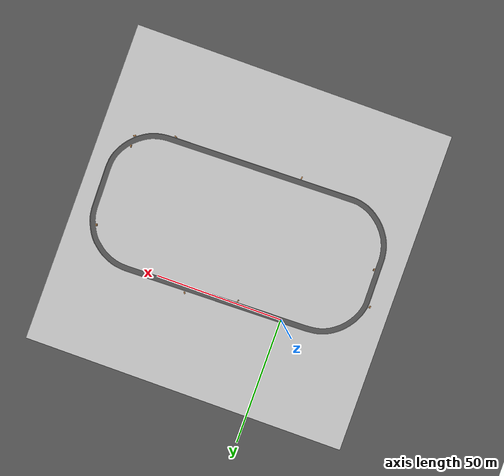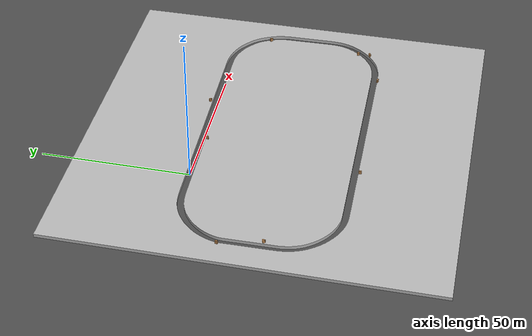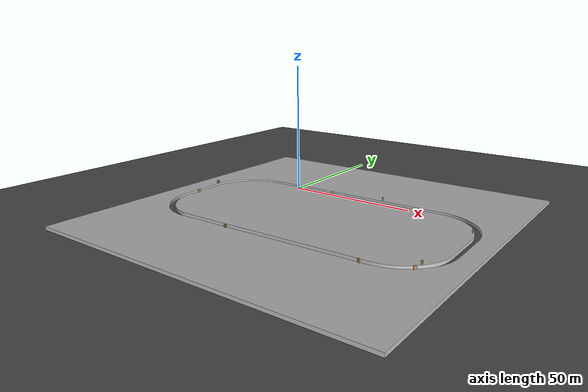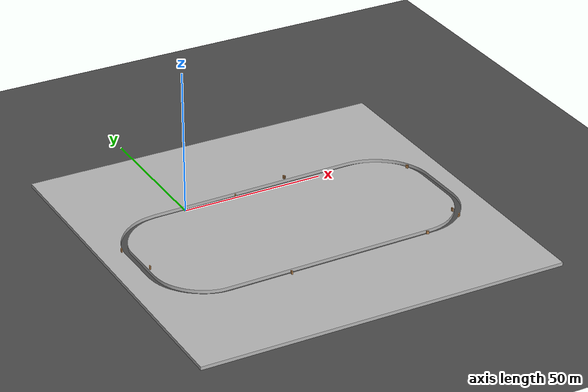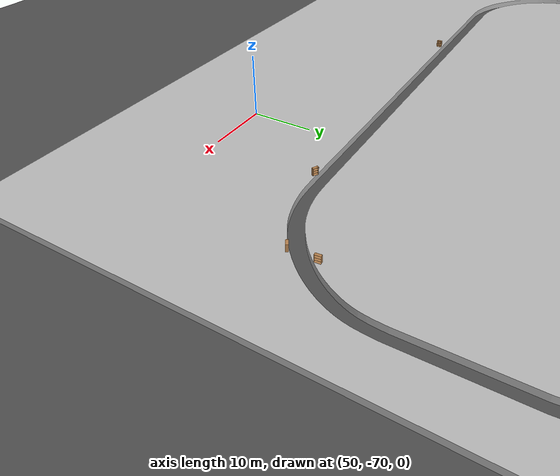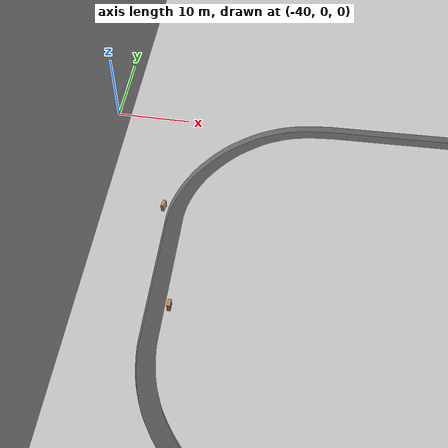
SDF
<sdf version="1.7">
 <world name="default">
  <light name="sun" type="directional">
   <pose>0 0 100 0 -0 0</pose>
   <diffuse>0.8 0.8 0.8 1</diffuse>
   <specular>0.1 0.1 0.1 1</specular>
   <attenuation>
    <range>1000</range>
    <constant>0.9</constant>
    <linear>0.01</linear>
    <quadratic>0.001</quadratic>
   </attenuation>
   <direction>-0.5 0.5 -1</direction>
   <spot><inner_angle>0</inner_angle><outer_angle>0</outer_angle><falloff>0</falloff></spot>
  </light>
  <model name="ground_plane">
   <static>1</static>
   <link name="link">
    <collision name="collision">
     <geometry><plane><normal>0 0 1</normal><size>1000 1000</size></plane></geometry>
     <surface><friction><ode><mu>100</mu><mu2>50</mu2></ode></friction></surface>
    </collision>
    <visual name="visual">
     <cast_shadows>0</cast_shadows>
     <geometry><plane><normal>0 0 1</normal><size>1000 1000</size></plane></geometry>
     <material>
      <script>
       <uri>model://asphalt_plane/materials/scripts</uri>
       <uri>model://asphalt_plane/materials/textures</uri>
       <name>vrc/asphalt</name>
      </script>
     </material>
    </visual>
   </link>
  </model>
  <gravity>0 0 -9.8</gravity>
  <magnetic_field>6e-06 2.3e-05 -4.2e-05</magnetic_field>
  <atmosphere type="adiabatic"/>
  <physics name="default_physics" default="0" type="ode">
   <max_step_size>0.001</max_step_size>
   <real_time_factor>1</real_time_factor>
   <real_time_update_rate>1000</real_time_update_rate>
  </physics>
  <scene><ambient>0.4 0.4 0.4 1</ambient><background>0.7 0.7 0.7 1</background><shadows>1</shadows></scene>
  <spherical_coordinates>
   <surface_model>EARTH_WGS84</surface_model>
   <latitude_deg>0</latitude_deg>
   <longitude_deg>0</longitude_deg>
   <elevation>0</elevation>
   <heading_deg>0</heading_deg>
  </spherical_coordinates>
  <model name="obj_IMS_track">
   <pose>81 31 -0.5 0 -0 0</pose>
   <static>1</static>
   <link name="body">
    <collision name="collision">
     <geometry><mesh><uri>model://obj_IMS_track/IMS_track.stl</uri><scale>1 1 1</scale></mesh></geometry>
    </collision>
    <visual name="visual">
     <geometry><mesh><uri>model://obj_IMS_track/IMS_track.stl</uri><scale>1 1 1</scale></mesh></geometry>
    </visual>
   </link>
  </model>
  <audio><device>default</device></audio>
  <model name="bookshelf_clone_0">
   <static>1</static>
   <link name="link">
    <inertial><mass>1</mass></inertial>
    <collision name="back">
     <pose>0 0.005 0.6 0 -0 0</pose>
     <geometry><box><size>0.9 0.01 1.2</size></box></geometry>
    </collision>
    <visual name="visual1">
     <pose>0 0.005 0.6 0 -0 0</pose>
     <geometry><box><size>0.9 0.01 1.2</size></box></geometry>
     <material>
      <script><uri>file://media/materials/scripts/gazebo.material</uri><name>Gazebo/Wood</name></script>
     </material>
    </visual>
    <collision name="left_side">
     <pose>0.45 -0.195 0.6 0 -0 0</pose>
     <geometry><box><size>0.02 0.4 1.2</size></box></geometry>
    </collision>
    <visual name="visual2">
     <pose>0.45 -0.195 0.6 0 -0 0</pose>
     <geometry><box><size>0.02 0.4 1.2</size></box></geometry>
     <material>
      <script><uri>file://media/materials/scripts/gazebo.material</uri><name>Gazebo/Wood</name></script>
     </material>
    </visual>
    <collision name="right_side">
     <pose>-0.45 -0.195 0.6 0 -0 0</pose>
     <geometry><box><size>0.02 0.4 1.2</size></box></geometry>
    </collision>
    <visual name="visual3">
     <pose>-0.45 -0.195 0.6 0 -0 0</pose>
     <geometry><box><size>0.02 0.4 1.2</size></box></geometry>
     <material>
      <script><uri>file://media/materials/scripts/gazebo.material</uri><name>Gazebo/Wood</name></script>
     </material>
    </visual>
    <collision name="bottom">
     <pose>0 -0.195 0.03 0 -0 0</pose>
     <geometry><box><size>0.88 0.4 0.06</size></box></geometry>
    </collision>
    <visual name="visual4">
     <pose>0 -0.195 0.03 0 -0 0</pose>
     <geometry><box><size>0.88 0.4 0.06</size></box></geometry>
     <material>
      <script><uri>file://media/materials/scripts/gazebo.material</uri><name>Gazebo/Wood</name></script>
     </material>
    </visual>
    <collision name="top">
     <pose>0 -0.195 1.19 0 -0 0</pose>
     <geometry><box><size>0.88 0.4 0.02</size></box></geometry>
    </collision>
    <visual name="visual5">
     <pose>0 -0.195 1.19 0 -0 0</pose>
     <geometry><box><size>0.88 0.4 0.02</size></box></geometry>
     <material>
      <script><uri>file://media/materials/scripts/gazebo.material</uri><name>Gazebo/Wood</name></script>
     </material>
    </visual>
    <collision name="low_shelf">
     <pose>0 -0.195 0.43 0 -0 0</pose>
     <geometry><box><size>0.88 0.4 0.02</size></box></geometry>
    </collision>
    <visual name="visual6">
     <pose>0 -0.195 0.43 0 -0 0</pose>
     <geometry><box><size>0.88 0.4 0.02</size></box></geometry>
     <material>
      <script><uri>file://media/materials/scripts/gazebo.material</uri><name>Gazebo/Wood</name></script>
     </material>
    </visual>
    <collision name="high_shelf">
     <pose>0 -0.195 0.8 0 -0 0</pose>
     <geometry><box><size>0.88 0.4 0.02</size></box></geometry>
    </collision>
    <visual name="visual7">
     <pose>0 -0.195 0.8 0 -0 0</pose>
     <geometry><box><size>0.88 0.4 0.02</size></box></geometry>
     <material>
      <script><uri>file://media/materials/scripts/gazebo.material</uri><name>Gazebo/Wood</name></script>
     </material>
    </visual>
   </link>
   <pose>38.3129 2.63837 0.959092 0 0 -0.95491</pose>
  </model>
  <model name="bookshelf_clone_4">
   <static>1</static>
   <link name="link">
    <inertial><mass>1</mass></inertial>
    <collision name="back">
     <pose>0 0.005 0.6 0 -0 0</pose>
     <geometry><box><size>0.9 0.01 1.2</size></box></geometry>
    </collision>
    <visual name="visual1">
     <pose>0 0.005 0.6 0 -0 0</pose>
     <geometry><box><size>0.9 0.01 1.2</size></box></geometry>
     <material>
      <script><uri>file://media/materials/scripts/gazebo.material</uri><name>Gazebo/Wood</name></script>
     </material>
    </visual>
    <collision name="left_side">
     <pose>0.45 -0.195 0.6 0 -0 0</pose>
     <geometry><box><size>0.02 0.4 1.2</size></box></geometry>
    </collision>
    <visual name="visual2">
     <pose>0.45 -0.195 0.6 0 -0 0</pose>
     <geometry><box><size>0.02 0.4 1.2</size></box></geometry>
     <material>
      <script><uri>file://media/materials/scripts/gazebo.material</uri><name>Gazebo/Wood</name></script>
     </material>
    </visual>
    <collision name="right_side">
     <pose>-0.45 -0.195 0.6 0 -0 0</pose>
     <geometry><box><size>0.02 0.4 1.2</size></box></geometry>
    </collision>
    <visual name="visual3">
     <pose>-0.45 -0.195 0.6 0 -0 0</pose>
     <geometry><box><size>0.02 0.4 1.2</size></box></geometry>
     <material>
      <script><uri>file://media/materials/scripts/gazebo.material</uri><name>Gazebo/Wood</name></script>
     </material>
    </visual>
    <collision name="bottom">
     <pose>0 -0.195 0.03 0 -0 0</pose>
     <geometry><box><size>0.88 0.4 0.06</size></box></geometry>
    </collision>
    <visual name="visual4">
     <pose>0 -0.195 0.03 0 -0 0</pose>
     <geometry><box><size>0.88 0.4 0.06</size></box></geometry>
     <material>
      <script><uri>file://media/materials/scripts/gazebo.material</uri><name>Gazebo/Wood</name></script>
     </material>
    </visual>
    <collision name="top">
     <pose>0 -0.195 1.19 0 -0 0</pose>
     <geometry><box><size>0.88 0.4 0.02</size></box></geometry>
    </collision>
    <visual name="visual5">
     <pose>0 -0.195 1.19 0 -0 0</pose>
     <geometry><box><size>0.88 0.4 0.02</size></box></geometry>
     <material>
      <script><uri>file://media/materials/scripts/gazebo.material</uri><name>Gazebo/Wood</name></script>
     </material>
    </visual>
    <collision name="low_shelf">
     <pose>0 -0.195 0.43 0 -0 0</pose>
     <geometry><box><size>0.88 0.4 0.02</size></box></geometry>
    </collision>
    <visual name="visual6">
     <pose>0 -0.195 0.43 0 -0 0</pose>
     <geometry><box><size>0.88 0.4 0.02</size></box></geometry>
     <material>
      <script><uri>file://media/materials/scripts/gazebo.material</uri><name>Gazebo/Wood</name></script>
     </material>
    </visual>
    <collision name="high_shelf">
     <pose>0 -0.195 0.8 0 -0 0</pose>
     <geometry><box><size>0.88 0.4 0.02</size></box></geometry>
    </collision>
    <visual name="visual7">
     <pose>0 -0.195 0.8 0 -0 0</pose>
     <geometry><box><size>0.88 0.4 0.02</size></box></geometry>
     <material>
      <script><uri>file://media/materials/scripts/gazebo.material</uri><name>Gazebo/Wood</name></script>
     </material>
    </visual>
   </link>
   <pose>78.2639 -10.6813 0.959092 0 -0 1.99192</pose>
  </model>
  <model name="bookshelf_clone_5">
   <static>1</static>
   <link name="link">
    <inertial><mass>1</mass></inertial>
    <collision name="back">
     <pose>0 0.005 0.6 0 -0 0</pose>
     <geometry><box><size>0.9 0.01 1.2</size></box></geometry>
    </collision>
    <visual name="visual1">
     <pose>0 0.005 0.6 0 -0 0</pose>
     <geometry><box><size>0.9 0.01 1.2</size></box></geometry>
     <material>
      <script><uri>file://media/materials/scripts/gazebo.material</uri><name>Gazebo/Wood</name></script>
     </material>
    </visual>
    <collision name="left_side">
     <pose>0.45 -0.195 0.6 0 -0 0</pose>
     <geometry><box><size>0.02 0.4 1.2</size></box></geometry>
    </collision>
    <visual name="visual2">
     <pose>0.45 -0.195 0.6 0 -0 0</pose>
     <geometry><box><size>0.02 0.4 1.2</size></box></geometry>
     <material>
      <script><uri>file://media/materials/scripts/gazebo.material</uri><name>Gazebo/Wood</name></script>
     </material>
    </visual>
    <collision name="right_side">
     <pose>-0.45 -0.195 0.6 0 -0 0</pose>
     <geometry><box><size>0.02 0.4 1.2</size></box></geometry>
    </collision>
    <visual name="visual3">
     <pose>-0.45 -0.195 0.6 0 -0 0</pose>
     <geometry><box><size>0.02 0.4 1.2</size></box></geometry>
     <material>
      <script><uri>file://media/materials/scripts/gazebo.material</uri><name>Gazebo/Wood</name></script>
     </material>
    </visual>
    <collision name="bottom">
     <pose>0 -0.195 0.03 0 -0 0</pose>
     <geometry><box><size>0.88 0.4 0.06</size></box></geometry>
    </collision>
    <visual name="visual4">
     <pose>0 -0.195 0.03 0 -0 0</pose>
     <geometry><box><size>0.88 0.4 0.06</size></box></geometry>
     <material>
      <script><uri>file://media/materials/scripts/gazebo.material</uri><name>Gazebo/Wood</name></script>
     </material>
    </visual>
    <collision name="top">
     <pose>0 -0.195 1.19 0 -0 0</pose>
     <geometry><box><size>0.88 0.4 0.02</size></box></geometry>
    </collision>
    <visual name="visual5">
     <pose>0 -0.195 1.19 0 -0 0</pose>
     <geometry><box><size>0.88 0.4 0.02</size></box></geometry>
     <material>
      <script><uri>file://media/materials/scripts/gazebo.material</uri><name>Gazebo/Wood</name></script>
     </material>
    </visual>
    <collision name="low_shelf">
     <pose>0 -0.195 0.43 0 -0 0</pose>
     <geometry><box><size>0.88 0.4 0.02</size></box></geometry>
    </collision>
    <visual name="visual6">
     <pose>0 -0.195 0.43 0 -0 0</pose>
     <geometry><box><size>0.88 0.4 0.02</size></box></geometry>
     <material>
      <script><uri>file://media/materials/scripts/gazebo.material</uri><name>Gazebo/Wood</name></script>
     </material>
    </visual>
    <collision name="high_shelf">
     <pose>0 -0.195 0.8 0 -0 0</pose>
     <geometry><box><size>0.88 0.4 0.02</size></box></geometry>
    </collision>
    <visual name="visual7">
     <pose>0 -0.195 0.8 0 -0 0</pose>
     <geometry><box><size>0.88 0.4 0.02</size></box></geometry>
     <material>
      <script><uri>file://media/materials/scripts/gazebo.material</uri><name>Gazebo/Wood</name></script>
     </material>
    </visual>
   </link>
   <pose>-26.7126 -30.0844 0.959092 0 0 -1.59889</pose>
  </model>
  <model name="bookshelf_clone_6">
   <static>1</static>
   <link name="link">
    <inertial><mass>1</mass></inertial>
    <collision name="back">
     <pose>0 0.005 0.6 0 -0 0</pose>
     <geometry><box><size>0.9 0.01 1.2</size></box></geometry>
    </collision>
    <visual name="visual1">
     <pose>0 0.005 0.6 0 -0 0</pose>
     <geometry><box><size>0.9 0.01 1.2</size></box></geometry>
     <material>
      <script><uri>file://media/materials/scripts/gazebo.material</uri><name>Gazebo/Wood</name></script>
     </material>
    </visual>
    <collision name="left_side">
     <pose>0.45 -0.195 0.6 0 -0 0</pose>
     <geometry><box><size>0.02 0.4 1.2</size></box></geometry>
    </collision>
    <visual name="visual2">
     <pose>0.45 -0.195 0.6 0 -0 0</pose>
     <geometry><box><size>0.02 0.4 1.2</size></box></geometry>
     <material>
      <script><uri>file://media/materials/scripts/gazebo.material</uri><name>Gazebo/Wood</name></script>
     </material>
    </visual>
    <collision name="right_side">
     <pose>-0.45 -0.195 0.6 0 -0 0</pose>
     <geometry><box><size>0.02 0.4 1.2</size></box></geometry>
    </collision>
    <visual name="visual3">
     <pose>-0.45 -0.195 0.6 0 -0 0</pose>
     <geometry><box><size>0.02 0.4 1.2</size></box></geometry>
     <material>
      <script><uri>file://media/materials/scripts/gazebo.material</uri><name>Gazebo/Wood</name></script>
     </material>
    </visual>
    <collision name="bottom">
     <pose>0 -0.195 0.03 0 -0 0</pose>
     <geometry><box><size>0.88 0.4 0.06</size></box></geometry>
    </collision>
    <visual name="visual4">
     <pose>0 -0.195 0.03 0 -0 0</pose>
     <geometry><box><size>0.88 0.4 0.06</size></box></geometry>
     <material>
      <script><uri>file://media/materials/scripts/gazebo.material</uri><name>Gazebo/Wood</name></script>
     </material>
    </visual>
    <collision name="top">
     <pose>0 -0.195 1.19 0 -0 0</pose>
     <geometry><box><size>0.88 0.4 0.02</size></box></geometry>
    </collision>
    <visual name="visual5">
     <pose>0 -0.195 1.19 0 -0 0</pose>
     <geometry><box><size>0.88 0.4 0.02</size></box></geometry>
     <material>
      <script><uri>file://media/materials/scripts/gazebo.material</uri><name>Gazebo/Wood</name></script>
     </material>
    </visual>
    <collision name="low_shelf">
     <pose>0 -0.195 0.43 0 -0 0</pose>
     <geometry><box><size>0.88 0.4 0.02</size></box></geometry>
    </collision>
    <visual name="visual6">
     <pose>0 -0.195 0.43 0 -0 0</pose>
     <geometry><box><size>0.88 0.4 0.02</size></box></geometry>
     <material>
      <script><uri>file://media/materials/scripts/gazebo.material</uri><name>Gazebo/Wood</name></script>
     </material>
    </visual>
    <collision name="high_shelf">
     <pose>0 -0.195 0.8 0 -0 0</pose>
     <geometry><box><size>0.88 0.4 0.02</size></box></geometry>
    </collision>
    <visual name="visual7">
     <pose>0 -0.195 0.8 0 -0 0</pose>
     <geometry><box><size>0.88 0.4 0.02</size></box></geometry>
     <material>
      <script><uri>file://media/materials/scripts/gazebo.material</uri><name>Gazebo/Wood</name></script>
     </material>
    </visual>
   </link>
   <pose>-30.478 -16.1308 0.959092 0 -0 1.37454</pose>
  </model>
  <model name="bookshelf_clone_clone">
   <static>1</static>
   <link name="link">
    <inertial><mass>1</mass></inertial>
    <collision name="back">
     <pose>0 0.005 0.6 0 -0 0</pose>
     <geometry><box><size>0.9 0.01 1.2</size></box></geometry>
    </collision>
    <visual name="visual1">
     <pose>0 0.005 0.6 0 -0 0</pose>
     <geometry><box><size>0.9 0.01 1.2</size></box></geometry>
     <material>
      <script><uri>file://media/materials/scripts/gazebo.material</uri><name>Gazebo/Wood</name></script>
     </material>
    </visual>
    <collision name="left_side">
     <pose>0.45 -0.195 0.6 0 -0 0</pose>
     <geometry><box><size>0.02 0.4 1.2</size></box></geometry>
    </collision>
    <visual name="visual2">
     <pose>0.45 -0.195 0.6 0 -0 0</pose>
     <geometry><box><size>0.02 0.4 1.2</size></box></geometry>
     <material>
      <script><uri>file://media/materials/scripts/gazebo.material</uri><name>Gazebo/Wood</name></script>
     </material>
    </visual>
    <collision name="right_side">
     <pose>-0.45 -0.195 0.6 0 -0 0</pose>
     <geometry><box><size>0.02 0.4 1.2</size></box></geometry>
    </collision>
    <visual name="visual3">
     <pose>-0.45 -0.195 0.6 0 -0 0</pose>
     <geometry><box><size>0.02 0.4 1.2</size></box></geometry>
     <material>
      <script><uri>file://media/materials/scripts/gazebo.material</uri><name>Gazebo/Wood</name></script>
     </material>
    </visual>
    <collision name="bottom">
     <pose>0 -0.195 0.03 0 -0 0</pose>
     <geometry><box><size>0.88 0.4 0.06</size></box></geometry>
    </collision>
    <visual name="visual4">
     <pose>0 -0.195 0.03 0 -0 0</pose>
     <geometry><box><size>0.88 0.4 0.06</size></box></geometry>
     <material>
      <script><uri>file://media/materials/scripts/gazebo.material</uri><name>Gazebo/Wood</name></script>
     </material>
    </visual>
    <collision name="top">
     <pose>0 -0.195 1.19 0 -0 0</pose>
     <geometry><box><size>0.88 0.4 0.02</size></box></geometry>
    </collision>
    <visual name="visual5">
     <pose>0 -0.195 1.19 0 -0 0</pose>
     <geometry><box><size>0.88 0.4 0.02</size></box></geometry>
     <material>
      <script><uri>file://media/materials/scripts/gazebo.material</uri><name>Gazebo/Wood</name></script>
     </material>
    </visual>
    <collision name="low_shelf">
     <pose>0 -0.195 0.43 0 -0 0</pose>
     <geometry><box><size>0.88 0.4 0.02</size></box></geometry>
    </collision>
    <visual name="visual6">
     <pose>0 -0.195 0.43 0 -0 0</pose>
     <geometry><box><size>0.88 0.4 0.02</size></box></geometry>
     <material>
      <script><uri>file://media/materials/scripts/gazebo.material</uri><name>Gazebo/Wood</name></script>
     </material>
    </visual>
    <collision name="high_shelf">
     <pose>0 -0.195 0.8 0 -0 0</pose>
     <geometry><box><size>0.88 0.4 0.02</size></box></geometry>
    </collision>
    <visual name="visual7">
     <pose>0 -0.195 0.8 0 -0 0</pose>
     <geometry><box><size>0.88 0.4 0.02</size></box></geometry>
     <material>
      <script><uri>file://media/materials/scripts/gazebo.material</uri><name>Gazebo/Wood</name></script>
     </material>
    </visual>
   </link>
   <pose>18.0561 -1.40677 0.959092 0 0 -1.8756</pose>
  </model>
  <model name="bookshelf_clone_11_clone">
   <static>1</static>
   <link name="link">
    <inertial><mass>1</mass></inertial>
    <collision name="back">
     <pose>0 0.005 0.6 0 -0 0</pose>
     <geometry><box><size>0.9 0.01 1.2</size></box></geometry>
    </collision>
    <visual name="visual1">
     <pose>0 0.005 0.6 0 -0 0</pose>
     <geometry><box><size>0.9 0.01 1.2</size></box></geometry>
     <material>
      <script><uri>file://media/materials/scripts/gazebo.material</uri><name>Gazebo/Wood</name></script>
     </material>
    </visual>
    <collision name="left_side">
     <pose>0.45 -0.195 0.6 0 -0 0</pose>
     <geometry><box><size>0.02 0.4 1.2</size></box></geometry>
    </collision>
    <visual name="visual2">
     <pose>0.45 -0.195 0.6 0 -0 0</pose>
     <geometry><box><size>0.02 0.4 1.2</size></box></geometry>
     <material>
      <script><uri>file://media/materials/scripts/gazebo.material</uri><name>Gazebo/Wood</name></script>
     </material>
    </visual>
    <collision name="right_side">
     <pose>-0.45 -0.195 0.6 0 -0 0</pose>
     <geometry><box><size>0.02 0.4 1.2</size></box></geometry>
    </collision>
    <visual name="visual3">
     <pose>-0.45 -0.195 0.6 0 -0 0</pose>
     <geometry><box><size>0.02 0.4 1.2</size></box></geometry>
     <material>
      <script><uri>file://media/materials/scripts/gazebo.material</uri><name>Gazebo/Wood</name></script>
     </material>
    </visual>
    <collision name="bottom">
     <pose>0 -0.195 0.03 0 -0 0</pose>
     <geometry><box><size>0.88 0.4 0.06</size></box></geometry>
    </collision>
    <visual name="visual4">
     <pose>0 -0.195 0.03 0 -0 0</pose>
     <geometry><box><size>0.88 0.4 0.06</size></box></geometry>
     <material>
      <script><uri>file://media/materials/scripts/gazebo.material</uri><name>Gazebo/Wood</name></script>
     </material>
    </visual>
    <collision name="top">
     <pose>0 -0.195 1.19 0 -0 0</pose>
     <geometry><box><size>0.88 0.4 0.02</size></box></geometry>
    </collision>
    <visual name="visual5">
     <pose>0 -0.195 1.19 0 -0 0</pose>
     <geometry><box><size>0.88 0.4 0.02</size></box></geometry>
     <material>
      <script><uri>file://media/materials/scripts/gazebo.material</uri><name>Gazebo/Wood</name></script>
     </material>
    </visual>
    <collision name="low_shelf">
     <pose>0 -0.195 0.43 0 -0 0</pose>
     <geometry><box><size>0.88 0.4 0.02</size></box></geometry>
    </collision>
    <visual name="visual6">
     <pose>0 -0.195 0.43 0 -0 0</pose>
     <geometry><box><size>0.88 0.4 0.02</size></box></geometry>
     <material>
      <script><uri>file://media/materials/scripts/gazebo.material</uri><name>Gazebo/Wood</name></script>
     </material>
    </visual>
    <collision name="high_shelf">
     <pose>0 -0.195 0.8 0 -0 0</pose>
     <geometry><box><size>0.88 0.4 0.02</size></box></geometry>
    </collision>
    <visual name="visual7">
     <pose>0 -0.195 0.8 0 -0 0</pose>
     <geometry><box><size>0.88 0.4 0.02</size></box></geometry>
     <material>
      <script><uri>file://media/materials/scripts/gazebo.material</uri><name>Gazebo/Wood</name></script>
     </material>
    </visual>
   </link>
   <pose>76.0056 -43.2402 0.959092 0 -0 1.68289</pose>
  </model>
  <model name="bookshelf_clone_10_clone">
   <static>1</static>
   <link name="link">
    <inertial><mass>1</mass></inertial>
    <collision name="back">
     <pose>0 0.005 0.6 0 -0 0</pose>
     <geometry><box><size>0.9 0.01 1.2</size></box></geometry>
    </collision>
    <visual name="visual1">
     <pose>0 0.005 0.6 0 -0 0</pose>
     <geometry><box><size>0.9 0.01 1.2</size></box></geometry>
     <material>
      <script><uri>file://media/materials/scripts/gazebo.material</uri><name>Gazebo/Wood</name></script>
     </material>
    </visual>
    <collision name="left_side">
     <pose>0.45 -0.195 0.6 0 -0 0</pose>
     <geometry><box><size>0.02 0.4 1.2</size></box></geometry>
    </collision>
    <visual name="visual2">
     <pose>0.45 -0.195 0.6 0 -0 0</pose>
     <geometry><box><size>0.02 0.4 1.2</size></box></geometry>
     <material>
      <script><uri>file://media/materials/scripts/gazebo.material</uri><name>Gazebo/Wood</name></script>
     </material>
    </visual>
    <collision name="right_side">
     <pose>-0.45 -0.195 0.6 0 -0 0</pose>
     <geometry><box><size>0.02 0.4 1.2</size></box></geometry>
    </collision>
    <visual name="visual3">
     <pose>-0.45 -0.195 0.6 0 -0 0</pose>
     <geometry><box><size>0.02 0.4 1.2</size></box></geometry>
     <material>
      <script><uri>file://media/materials/scripts/gazebo.material</uri><name>Gazebo/Wood</name></script>
     </material>
    </visual>
    <collision name="bottom">
     <pose>0 -0.195 0.03 0 -0 0</pose>
     <geometry><box><size>0.88 0.4 0.06</size></box></geometry>
    </collision>
    <visual name="visual4">
     <pose>0 -0.195 0.03 0 -0 0</pose>
     <geometry><box><size>0.88 0.4 0.06</size></box></geometry>
     <material>
      <script><uri>file://media/materials/scripts/gazebo.material</uri><name>Gazebo/Wood</name></script>
     </material>
    </visual>
    <collision name="top">
     <pose>0 -0.195 1.19 0 -0 0</pose>
     <geometry><box><size>0.88 0.4 0.02</size></box></geometry>
    </collision>
    <visual name="visual5">
     <pose>0 -0.195 1.19 0 -0 0</pose>
     <geometry><box><size>0.88 0.4 0.02</size></box></geometry>
     <material>
      <script><uri>file://media/materials/scripts/gazebo.material</uri><name>Gazebo/Wood</name></script>
     </material>
    </visual>
    <collision name="low_shelf">
     <pose>0 -0.195 0.43 0 -0 0</pose>
     <geometry><box><size>0.88 0.4 0.02</size></box></geometry>
    </collision>
    <visual name="visual6">
     <pose>0 -0.195 0.43 0 -0 0</pose>
     <geometry><box><size>0.88 0.4 0.02</size></box></geometry>
     <material>
      <script><uri>file://media/materials/scripts/gazebo.material</uri><name>Gazebo/Wood</name></script>
     </material>
    </visual>
    <collision name="high_shelf">
     <pose>0 -0.195 0.8 0 -0 0</pose>
     <geometry><box><size>0.88 0.4 0.02</size></box></geometry>
    </collision>
    <visual name="visual7">
     <pose>0 -0.195 0.8 0 -0 0</pose>
     <geometry><box><size>0.88 0.4 0.02</size></box></geometry>
     <material>
      <script><uri>file://media/materials/scripts/gazebo.material</uri><name>Gazebo/Wood</name></script>
     </material>
    </visual>
   </link>
   <pose>76.2748 -47.5633 0.959092 0 0 -2.56395</pose>
  </model>
  <model name="bookshelf_clone_9_clone">
   <static>1</static>
   <link name="link">
    <inertial><mass>1</mass></inertial>
    <collision name="back">
     <pose>0 0.005 0.6 0 -0 0</pose>
     <geometry><box><size>0.9 0.01 1.2</size></box></geometry>
    </collision>
    <visual name="visual1">
     <pose>0 0.005 0.6 0 -0 0</pose>
     <geometry><box><size>0.9 0.01 1.2</size></box></geometry>
     <material>
      <script><uri>file://media/materials/scripts/gazebo.material</uri><name>Gazebo/Wood</name></script>
     </material>
    </visual>
    <collision name="left_side">
     <pose>0.45 -0.195 0.6 0 -0 0</pose>
     <geometry><box><size>0.02 0.4 1.2</size></box></geometry>
    </collision>
    <visual name="visual2">
     <pose>0.45 -0.195 0.6 0 -0 0</pose>
     <geometry><box><size>0.02 0.4 1.2</size></box></geometry>
     <material>
      <script><uri>file://media/materials/scripts/gazebo.material</uri><name>Gazebo/Wood</name></script>
     </material>
    </visual>
    <collision name="right_side">
     <pose>-0.45 -0.195 0.6 0 -0 0</pose>
     <geometry><box><size>0.02 0.4 1.2</size></box></geometry>
    </collision>
    <visual name="visual3">
     <pose>-0.45 -0.195 0.6 0 -0 0</pose>
     <geometry><box><size>0.02 0.4 1.2</size></box></geometry>
     <material>
      <script><uri>file://media/materials/scripts/gazebo.material</uri><name>Gazebo/Wood</name></script>
     </material>
    </visual>
    <collision name="bottom">
     <pose>0 -0.195 0.03 0 -0 0</pose>
     <geometry><box><size>0.88 0.4 0.06</size></box></geometry>
    </collision>
    <visual name="visual4">
     <pose>0 -0.195 0.03 0 -0 0</pose>
     <geometry><box><size>0.88 0.4 0.06</size></box></geometry>
     <material>
      <script><uri>file://media/materials/scripts/gazebo.material</uri><name>Gazebo/Wood</name></script>
     </material>
    </visual>
    <collision name="top">
     <pose>0 -0.195 1.19 0 -0 0</pose>
     <geometry><box><size>0.88 0.4 0.02</size></box></geometry>
    </collision>
    <visual name="visual5">
     <pose>0 -0.195 1.19 0 -0 0</pose>
     <geometry><box><size>0.88 0.4 0.02</size></box></geometry>
     <material>
      <script><uri>file://media/materials/scripts/gazebo.material</uri><name>Gazebo/Wood</name></script>
     </material>
    </visual>
    <collision name="low_shelf">
     <pose>0 -0.195 0.43 0 -0 0</pose>
     <geometry><box><size>0.88 0.4 0.02</size></box></geometry>
    </collision>
    <visual name="visual6">
     <pose>0 -0.195 0.43 0 -0 0</pose>
     <geometry><box><size>0.88 0.4 0.02</size></box></geometry>
     <material>
      <script><uri>file://media/materials/scripts/gazebo.material</uri><name>Gazebo/Wood</name></script>
     </material>
    </visual>
    <collision name="high_shelf">
     <pose>0 -0.195 0.8 0 -0 0</pose>
     <geometry><box><size>0.88 0.4 0.02</size></box></geometry>
    </collision>
    <visual name="visual7">
     <pose>0 -0.195 0.8 0 -0 0</pose>
     <geometry><box><size>0.88 0.4 0.02</size></box></geometry>
     <material>
      <script><uri>file://media/materials/scripts/gazebo.material</uri><name>Gazebo/Wood</name></script>
     </material>
    </visual>
   </link>
   <pose>61.2003 -52.488 0.959092 0 -0 2.6995</pose>
  </model>
  <model name="bookshelf_clone_8_clone">
   <static>1</static>
   <link name="link">
    <inertial><mass>1</mass></inertial>
    <collision name="back">
     <pose>0 0.005 0.6 0 -0 0</pose>
     <geometry><box><size>0.9 0.01 1.2</size></box></geometry>
    </collision>
    <visual name="visual1">
     <pose>0 0.005 0.6 0 -0 0</pose>
     <geometry><box><size>0.9 0.01 1.2</size></box></geometry>
     <material>
      <script><uri>file://media/materials/scripts/gazebo.material</uri><name>Gazebo/Wood</name></script>
     </material>
    </visual>
    <collision name="left_side">
     <pose>0.45 -0.195 0.6 0 -0 0</pose>
     <geometry><box><size>0.02 0.4 1.2</size></box></geometry>
    </collision>
    <visual name="visual2">
     <pose>0.45 -0.195 0.6 0 -0 0</pose>
     <geometry><box><size>0.02 0.4 1.2</size></box></geometry>
     <material>
      <script><uri>file://media/materials/scripts/gazebo.material</uri><name>Gazebo/Wood</name></script>
     </material>
    </visual>
    <collision name="right_side">
     <pose>-0.45 -0.195 0.6 0 -0 0</pose>
     <geometry><box><size>0.02 0.4 1.2</size></box></geometry>
    </collision>
    <visual name="visual3">
     <pose>-0.45 -0.195 0.6 0 -0 0</pose>
     <geometry><box><size>0.02 0.4 1.2</size></box></geometry>
     <material>
      <script><uri>file://media/materials/scripts/gazebo.material</uri><name>Gazebo/Wood</name></script>
     </material>
    </visual>
    <collision name="bottom">
     <pose>0 -0.195 0.03 0 -0 0</pose>
     <geometry><box><size>0.88 0.4 0.06</size></box></geometry>
    </collision>
    <visual name="visual4">
     <pose>0 -0.195 0.03 0 -0 0</pose>
     <geometry><box><size>0.88 0.4 0.06</size></box></geometry>
     <material>
      <script><uri>file://media/materials/scripts/gazebo.material</uri><name>Gazebo/Wood</name></script>
     </material>
    </visual>
    <collision name="top">
     <pose>0 -0.195 1.19 0 -0 0</pose>
     <geometry><box><size>0.88 0.4 0.02</size></box></geometry>
    </collision>
    <visual name="visual5">
     <pose>0 -0.195 1.19 0 -0 0</pose>
     <geometry><box><size>0.88 0.4 0.02</size></box></geometry>
     <material>
      <script><uri>file://media/materials/scripts/gazebo.material</uri><name>Gazebo/Wood</name></script>
     </material>
    </visual>
    <collision name="low_shelf">
     <pose>0 -0.195 0.43 0 -0 0</pose>
     <geometry><box><size>0.88 0.4 0.02</size></box></geometry>
    </collision>
    <visual name="visual6">
     <pose>0 -0.195 0.43 0 -0 0</pose>
     <geometry><box><size>0.88 0.4 0.02</size></box></geometry>
     <material>
      <script><uri>file://media/materials/scripts/gazebo.material</uri><name>Gazebo/Wood</name></script>
     </material>
    </visual>
    <collision name="high_shelf">
     <pose>0 -0.195 0.8 0 -0 0</pose>
     <geometry><box><size>0.88 0.4 0.02</size></box></geometry>
    </collision>
    <visual name="visual7">
     <pose>0 -0.195 0.8 0 -0 0</pose>
     <geometry><box><size>0.88 0.4 0.02</size></box></geometry>
     <material>
      <script><uri>file://media/materials/scripts/gazebo.material</uri><name>Gazebo/Wood</name></script>
     </material>
    </visual>
   </link>
   <pose>10.6077 -53.7085 0.959092 0 -0 1.52513</pose>
  </model>
 </world>
</sdf>
